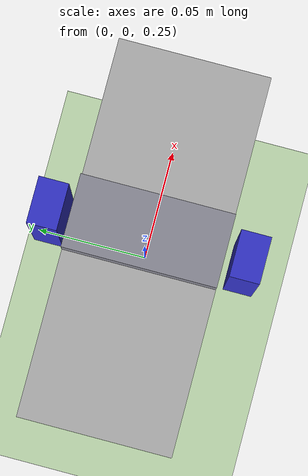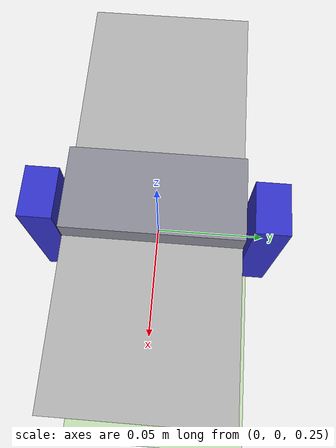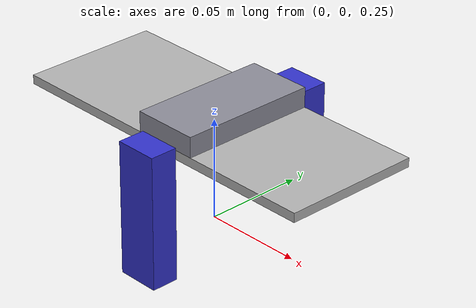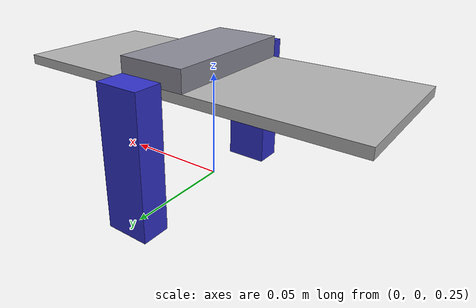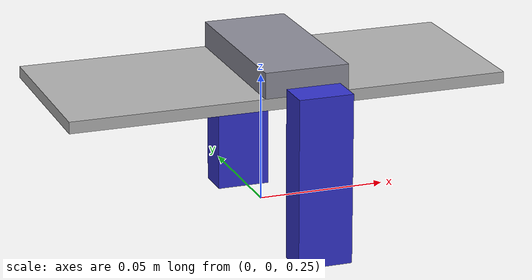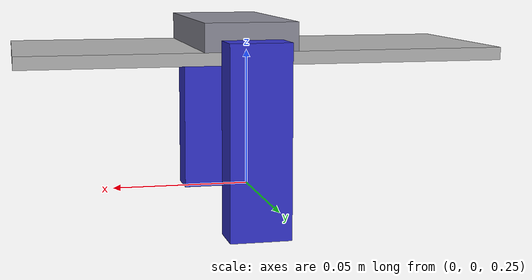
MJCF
<mujoco model="Growbot">
  <option gravity="0 0 -9.81" timestep="0.005" integrator="RK4" solver="CG" iterations="10" ls_iterations="10"/>

  <default>
    <geom friction="1.2 0.1 0.1" solref="0.005 1" solimp="0.99 0.99 0.01" condim="3"/>
    <joint damping="0.03" armature="0.002"/>
    <position kp="0.75" kv="0.05" ctrlrange="-1.57 1.57" forcerange="-1.5 1.5"/>
  </default>

  <worldbody>
    <light name="sun" pos="0 0 3" dir="0 0 -1" diffuse="0.8 0.8 0.8" specular="0.2 0.2 0.2" castshadow="true"/>
    <geom name="floor" type="plane" size="0 0 0.05" rgba="0.76 0.87 0.70 1"/>

    <body name="base_body" pos="0 0 0.3">
      <joint name="root_joint" type="free"/>
      <inertial pos="-0.02 0 0" mass="0.426606" diaginertia="0.000168019 0.00102813 0.00119471"/>
      <geom name="torso_geom" type="box" size="0.085 0.0343 0.00225" pos="0 0 0" rgba="0.7 0.7 0.7 1"/>
      <geom name="servo_rib" type="box" size="0.0163 0.0343 0.005" pos="0.00565 0 0.00725" contype="0" conaffinity="0" rgba="0.55 0.55 0.6 1"/>

      <body name="right_leg" pos="0.00565 -0.04505 0.00658863">
        <joint name="joint_1" type="hinge" axis="0 1 0" limited="true" range="-90 90"/>
        <geom name="lower_leg_1" type="box" size="0.0105 0.00675 0.0329144" pos="0.000894822 0 -0.0329144" mass="0.026697" rgba="0.2 0.2 0.8 1"/>
      </body>

      <body name="left_leg" pos="0.00565 0.04505 0.00658863">
        <joint name="joint_2" type="hinge" axis="0 1 0" limited="true" range="-90 90"/>
        <geom name="lower_leg_2" type="box" size="0.0105 0.00675 0.0329144" pos="0.000894822 0 -0.0329144" mass="0.026697" rgba="0.2 0.2 0.8 1"/>
      </body>
    </body>
  </worldbody>

  <actuator>
    <position name="servo_1" joint="joint_1"/>
    <position name="servo_2" joint="joint_2"/>
  </actuator>
</mujoco>
